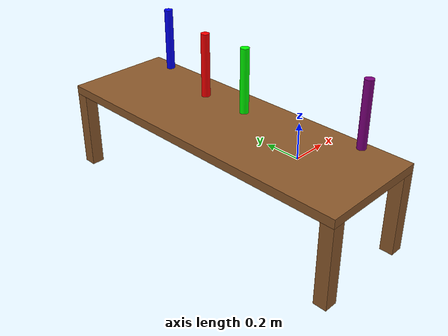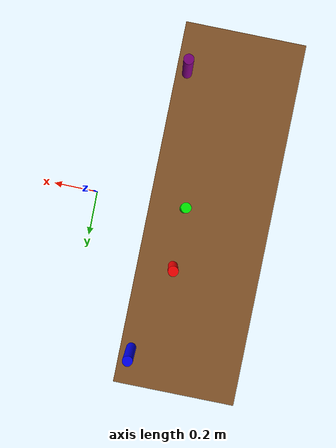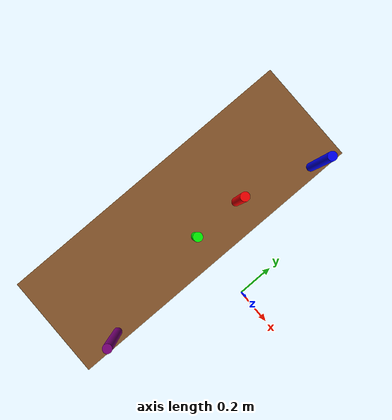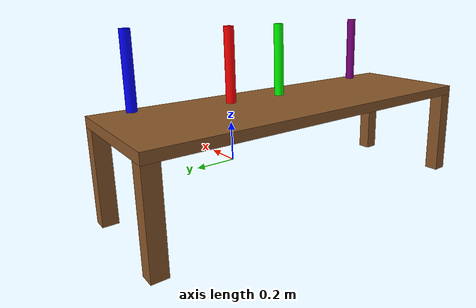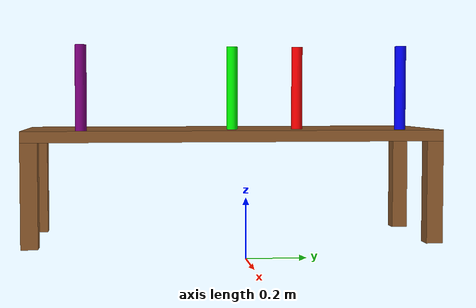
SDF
<?xml version="1.0" ?>
<sdf version="1.9">
  <model name="environment">
    <static>true</static>

    <!-- ===================== TABLETOP ===================== -->
    <link name="tabletop_link">
      <pose>-0.505 0.0 0.39 0 0 1.570796</pose>

      <collision name="tabletop_collision">
        <geometry>
          <box><size>1.50 0.50 0.04</size></box>
        </geometry>
      </collision>

      <visual name="tabletop_visual">
        <geometry>
          <box><size>1.50 0.50 0.04</size></box>
        </geometry>
        <material>
          <ambient>0.55 0.35 0.17 1</ambient>
          <diffuse>0.55 0.35 0.17 1</diffuse>
        </material>
      </visual>
    </link>

    <!-- ===================== LEGS (WOOD) ===================== -->

    <link name="leg_fl">
      <pose>-0.725  0.72  0.185 0 0 1.570796</pose>
      <collision name="collision">
        <geometry><box><size>0.06 0.06 0.37</size></box></geometry>
      </collision>
      <visual name="visual">
        <geometry><box><size>0.06 0.06 0.37</size></box></geometry>
        <material>
          <ambient>0.55 0.35 0.17 1</ambient>
          <diffuse>0.55 0.35 0.17 1</diffuse>
        </material>
      </visual>
    </link>

    <link name="leg_fr">
      <pose>-0.285  0.72  0.185 0 0 1.570796</pose>
      <collision name="collision">
        <geometry><box><size>0.06 0.06 0.37</size></box></geometry>
      </collision>
      <visual name="visual">
        <geometry><box><size>0.06 0.06 0.37</size></box></geometry>
        <material>
          <ambient>0.55 0.35 0.17 1</ambient>
          <diffuse>0.55 0.35 0.17 1</diffuse>
        </material>
      </visual>
    </link>

    <link name="leg_bl">
      <pose>-0.725 -0.72  0.185 0 0 1.570796</pose>
      <collision name="collision">
        <geometry><box><size>0.06 0.06 0.37</size></box></geometry>
      </collision>
      <visual name="visual">
        <geometry><box><size>0.06 0.06 0.37</size></box></geometry>
        <material>
          <ambient>0.55 0.35 0.17 1</ambient>
          <diffuse>0.55 0.35 0.17 1</diffuse>
        </material>
      </visual>
    </link>

    <link name="leg_br">
      <pose>-0.285 -0.72  0.185 0 0 1.570796</pose>
      <collision name="collision">
        <geometry><box><size>0.06 0.06 0.37</size></box></geometry>
      </collision>
      <visual name="visual">
        <geometry><box><size>0.06 0.06 0.37</size></box></geometry>
        <material>
          <ambient>0.55 0.35 0.17 1</ambient>
          <diffuse>0.55 0.35 0.17 1</diffuse>
        </material>
      </visual>
    </link>

    <!-- ===========================================================
         NESTED DYNAMIC CYLINDERS MODEL
         =========================================================== -->
    <model name="objects">
      <static>false</static>

      <!-- ========== CYLINDER 1 (Red) ========== -->
      <link name="cylinder_link1">
        <gravity>false</gravity>
        <pose>-0.400001 0.24 0.56 0 0 1.570796</pose>

        <inertial>
          <mass>0.5</mass>
          <inertia>
            <ixx>1e-4</ixx><iyy>1e-4</iyy><izz>1e-4</izz>
            <ixy>0</ixy><ixz>0</ixz><iyz>0</iyz>
          </inertia>
        </inertial>

        <visual name="visual">
          <geometry>
            <cylinder><radius>0.02</radius><length>0.3</length></cylinder>
          </geometry>
          <material>
          <ambient>1 0 0 1</ambient>
          <diffuse>1 0 0 1</diffuse>
          </material>
        </visual>
      </link>

      <!-- ========== CYLINDER 2 (Blue, with collision) ========== -->
      <link name="cylinder_link2">
        <gravity>true</gravity>
        <pose>-0.30 0.60 0.56 0 0 1.570796</pose>

        <inertial>
          <mass>1.0</mass>
          <inertia>
            <ixx>1e-4</ixx><iyy>1e-4</iyy><izz>1e-4</izz>
            <ixy>0</ixy><ixz>0</ixz><iyz>0</iyz>
          </inertia>
        </inertial>

        <collision name="collision">
          <geometry>
            <cylinder><radius>0.02</radius><length>0.3</length></cylinder>
          </geometry>
          <surface>
            <friction>
              <ode><mu>4.0</mu><mu2>4.0</mu2></ode>
            </friction>
          </surface>
        </collision>

        <visual name="visual">
          <geometry>
            <cylinder><radius>0.02</radius><length>0.3</length></cylinder>
          </geometry>
          <material>
          <ambient>0 0 1 1</ambient>
          <diffuse>0 0 1 1</diffuse>
          </material>
        </visual>
      </link>

      <!-- ========== CYLINDER 3 (Green) ========== -->
      <link name="cylinder_link3">
        <gravity>false</gravity>
        <pose>-0.400001 0.0 0.56 0 0 1.570796</pose>

        <inertial>
          <mass>2.5</mass>
          <inertia>
            <ixx>1e-4</ixx><iyy>1e-4</iyy><izz>1e-4</izz>
            <ixy>0</ixy><ixz>0</ixz><iyz>0</iyz>
          </inertia>
        </inertial>

        <visual name="visual">
          <geometry>
            <cylinder><radius>0.02</radius><length>0.30</length></cylinder>
          </geometry>
          <material>
          <ambient>0 1 0 1</ambient>
          <diffuse>0 1 0 1</diffuse>
          </material>
        </visual>
      </link>

      <!-- ========== CYLINDER 4 (Purple) ========== -->
      <link name="cylinder_link4">
        <gravity>false</gravity>
        <pose>-0.300001 -0.5418888 0.56 0 0 1.570796</pose>

        <inertial>
          <mass>2.5</mass>
          <inertia>
            <ixx>1e-4</ixx><iyy>1e-4</iyy><izz>1e-4</izz>
            <ixy>0</ixy><ixz>0</ixz><iyz>0</iyz>
          </inertia>
        </inertial>

        <visual name="visual">
          <geometry>
            <cylinder><radius>0.02</radius><length>0.30</length></cylinder>
          </geometry>
          <material>
          <ambient>0.5 0 0.5 1</ambient>
          <diffuse>0.5 0 0.5 1</diffuse>
          </material>
        </visual>
      </link>

    </model>

  </model>
</sdf>
